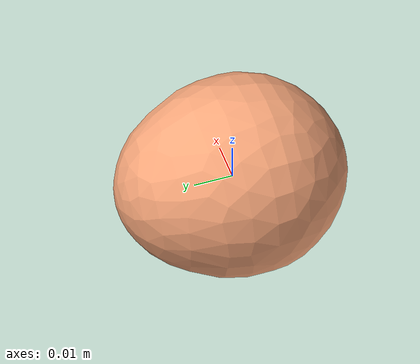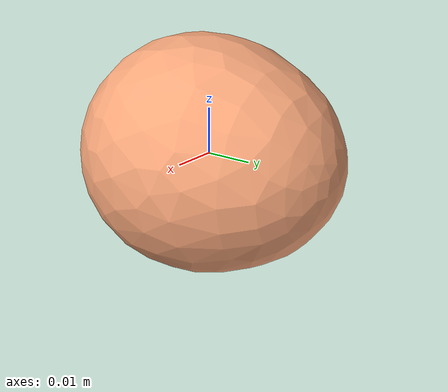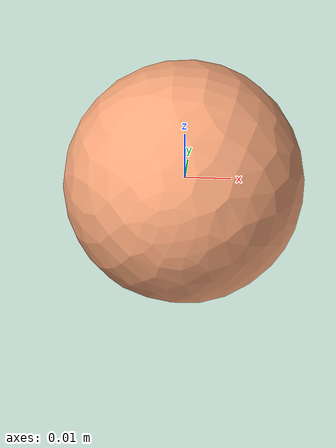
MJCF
<mujoco model="Egg_7">
  <compiler autolimits="true" boundmass="0.01" angle="radian"/>
  <default>
    <default class="/">
      <default class="__VISUAL_MJT__">
        <geom contype="0" conaffinity="0" group="0"/>
      </default>
      <default class="__STRUCTURAL_MJT__">
        <geom contype="8" conaffinity="15" group="4" friction="0.90000000000000002 0.90000000000000002 0.001" solref="0.025000000000000001 1" solimp="0.998 0.998 0.001"/>
      </default>
      <default class="__DYNAMIC_MJT__">
        <geom contype="1" conaffinity="15" group="4" friction="0.90000000000000002 0.90000000000000002 0.001" solref="0.025000000000000001 1" solimp="0.998 0.998 0.001"/>
      </default>
    </default>
  </default>
  <asset>
    <material name="material_Egg1_Mat" class="/" specular="0.5" shininess="0.5" rgba="0.96078439999999998 0.64705880000000005 0.47450979999999998 1"/>
    <mesh name="Egg_7_egg_7" class="/" file="Egg_7_egg_7/Egg_7_egg_7.obj" scale="1 1 1"/>
  </asset>
  <worldbody>
    <body name="Egg_7">
      <joint name="Egg_7_free" class="/" type="free" pos="0 0 0" axis="0 0 1" stiffness="0" range="0 0" armature="0" damping="0.10000000000000001" frictionloss="0"/>
      <body name="Egg_7_egg_7" pos="-0 0 0" quat="1 0 0 0">
        <geom name="Egg_7_egg_7" class="__VISUAL_MJT__" type="mesh" material="material_Egg1_Mat" shellinertia="true" mesh="Egg_7_egg_7"/>
        <geom name="Egg_7_PrimitiveCollider_0" class="__DYNAMIC_MJT__" type="capsule" size="0.024093262851238251 0.004824664443731308" rgba="0 1 0 1" pos="-0 0 0" quat="0.70710678118654757 0.70710678118654746 0 0"/>
      </body>
    </body>
  </worldbody>
</mujoco>
